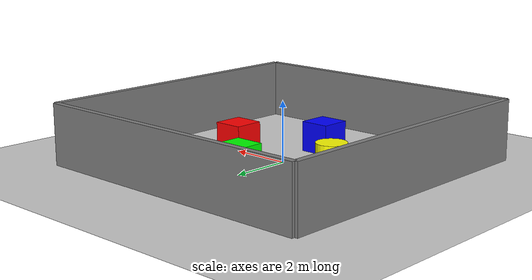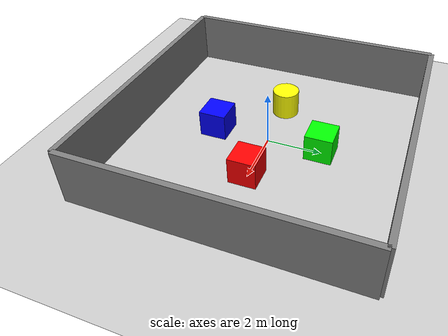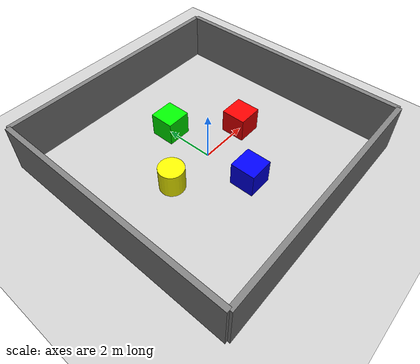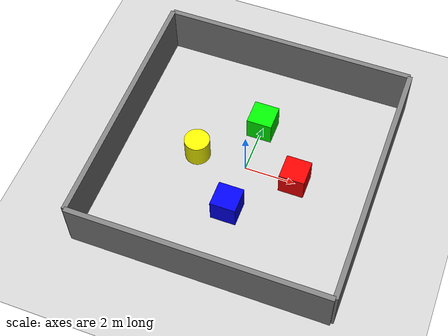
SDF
<?xml version="1.0" ?>
<sdf version="1.8">
  <world name="test_world">

    <!-- Physics -->
    <physics name="1ms" type="ignored">
      <max_step_size>0.001</max_step_size>
      <real_time_factor>1.0</real_time_factor>
    </physics>

    <!-- Plugins -->
    <plugin filename="gz-sim-physics-system" name="gz::sim::systems::Physics"></plugin>
    <plugin filename="gz-sim-user-commands-system" name="gz::sim::systems::UserCommands"></plugin>
    <plugin filename="gz-sim-scene-broadcaster-system" name="gz::sim::systems::SceneBroadcaster"></plugin>
    <plugin filename="gz-sim-sensors-system" name="gz::sim::systems::Sensors">
      <render_engine>ogre2</render_engine>
    </plugin>

    <!-- Lighting -->
    <light type="directional" name="sun">
      <cast_shadows>true</cast_shadows>
      <pose>0 0 10 0 0 0</pose>
      <diffuse>0.8 0.8 0.8 1</diffuse>
      <specular>0.2 0.2 0.2 1</specular>
      <attenuation>
        <range>1000</range>
        <constant>0.9</constant>
        <linear>0.01</linear>
        <quadratic>0.001</quadratic>
      </attenuation>
      <direction>-0.5 0.1 -0.9</direction>
    </light>

    <!-- Ground Plane -->
    <model name="ground_plane">
      <static>true</static>
      <link name="link">
        <collision name="collision">
          <geometry>
            <plane>
              <normal>0 0 1</normal>
              <size>100 100</size>
            </plane>
          </geometry>
        </collision>
        <visual name="visual">
          <geometry>
            <plane>
              <normal>0 0 1</normal>
              <size>100 100</size>
            </plane>
          </geometry>
          <material>
            <ambient>0.8 0.8 0.8 1</ambient>
            <diffuse>0.8 0.8 0.8 1</diffuse>
          </material>
        </visual>
      </link>
    </model>

    <!-- Red Box in front -->
    <model name="red_box">
      <static>true</static>
      <pose>2 0 0.5 0 0 0</pose>
      <link name="link">
        <collision name="collision">
          <geometry>
            <box>
              <size>1 1 1</size>
            </box>
          </geometry>
        </collision>
        <visual name="visual">
          <geometry>
            <box>
              <size>1 1 1</size>
            </box>
          </geometry>
          <material>
            <ambient>1 0 0 1</ambient>
            <diffuse>1 0 0 1</diffuse>
          </material>
        </visual>
      </link>
    </model>

    <!-- Green Box to the left -->
    <model name="green_box">
      <static>true</static>
      <pose>0 2 0.5 0 0 0</pose>
      <link name="link">
        <collision name="collision">
          <geometry>
            <box>
              <size>1 1 1</size>
            </box>
          </geometry>
        </collision>
        <visual name="visual">
          <geometry>
            <box>
              <size>1 1 1</size>
            </box>
          </geometry>
          <material>
            <ambient>0 1 0 1</ambient>
            <diffuse>0 1 0 1</diffuse>
          </material>
        </visual>
      </link>
    </model>

    <!-- Blue Box to the right -->
    <model name="blue_box">
      <static>true</static>
      <pose>0 -2 0.5 0 0 0</pose>
      <link name="link">
        <collision name="collision">
          <geometry>
            <box>
              <size>1 1 1</size>
            </box>
          </geometry>
        </collision>
        <visual name="visual">
          <geometry>
            <box>
              <size>1 1 1</size>
            </box>
          </geometry>
          <material>
            <ambient>0 0 1 1</ambient>
            <diffuse>0 0 1 1</diffuse>
          </material>
        </visual>
      </link>
    </model>

    <!-- Yellow Cylinder -->
    <model name="yellow_cylinder">
      <static>true</static>
      <pose>-2 0 0.5 0 0 0</pose>
      <link name="link">
        <collision name="collision">
          <geometry>
            <cylinder>
              <radius>0.5</radius>
              <length>1</length>
            </cylinder>
          </geometry>
        </collision>
        <visual name="visual">
          <geometry>
            <cylinder>
              <radius>0.5</radius>
              <length>1</length>
            </cylinder>
          </geometry>
          <material>
            <ambient>1 1 0 1</ambient>
            <diffuse>1 1 0 1</diffuse>
          </material>
        </visual>
      </link>
    </model>

    <!-- Walls forming a simple room -->
    <model name="wall_north">
      <static>true</static>
      <pose>5 0 1 0 0 0</pose>
      <link name="link">
        <collision name="collision">
          <geometry>
            <box>
              <size>0.2 10 2</size>
            </box>
          </geometry>
        </collision>
        <visual name="visual">
          <geometry>
            <box>
              <size>0.2 10 2</size>
            </box>
          </geometry>
          <material>
            <ambient>0.5 0.5 0.5 1</ambient>
            <diffuse>0.5 0.5 0.5 1</diffuse>
          </material>
        </visual>
      </link>
    </model>

    <model name="wall_south">
      <static>true</static>
      <pose>-5 0 1 0 0 0</pose>
      <link name="link">
        <collision name="collision">
          <geometry>
            <box>
              <size>0.2 10 2</size>
            </box>
          </geometry>
        </collision>
        <visual name="visual">
          <geometry>
            <box>
              <size>0.2 10 2</size>
            </box>
          </geometry>
          <material>
            <ambient>0.5 0.5 0.5 1</ambient>
            <diffuse>0.5 0.5 0.5 1</diffuse>
          </material>
        </visual>
      </link>
    </model>

    <model name="wall_east">
      <static>true</static>
      <pose>0 5 1 0 0 0</pose>
      <link name="link">
        <collision name="collision">
          <geometry>
            <box>
              <size>10 0.2 2</size>
            </box>
          </geometry>
        </collision>
        <visual name="visual">
          <geometry>
            <box>
              <size>10 0.2 2</size>
            </box>
          </geometry>
          <material>
            <ambient>0.5 0.5 0.5 1</ambient>
            <diffuse>0.5 0.5 0.5 1</diffuse>
          </material>
        </visual>
      </link>
    </model>

    <model name="wall_west">
      <static>true</static>
      <pose>0 -5 1 0 0 0</pose>
      <link name="link">
        <collision name="collision">
          <geometry>
            <box>
              <size>10 0.2 2</size>
            </box>
          </geometry>
        </collision>
        <visual name="visual">
          <geometry>
            <box>
              <size>10 0.2 2</size>
            </box>
          </geometry>
          <material>
            <ambient>0.5 0.5 0.5 1</ambient>
            <diffuse>0.5 0.5 0.5 1</diffuse>
          </material>
        </visual>
      </link>
    </model>

  </world>
</sdf>
